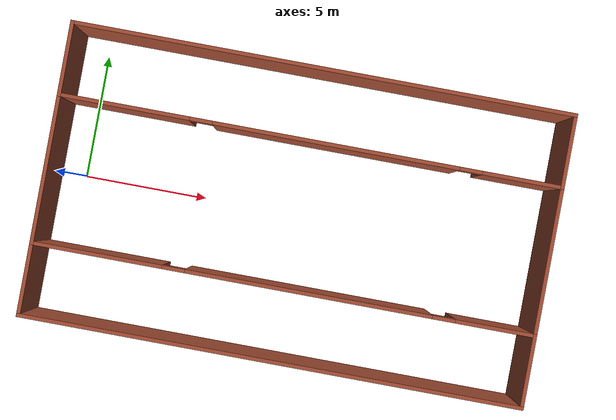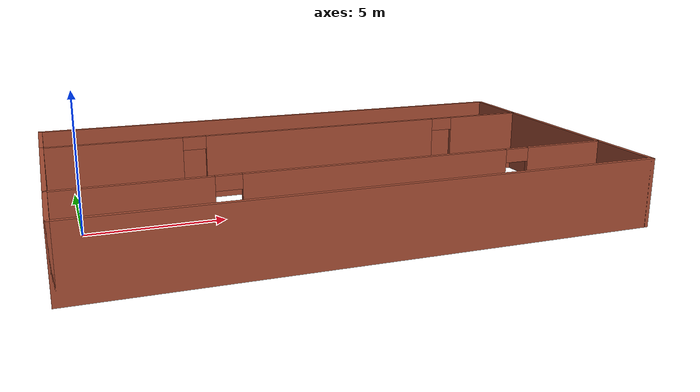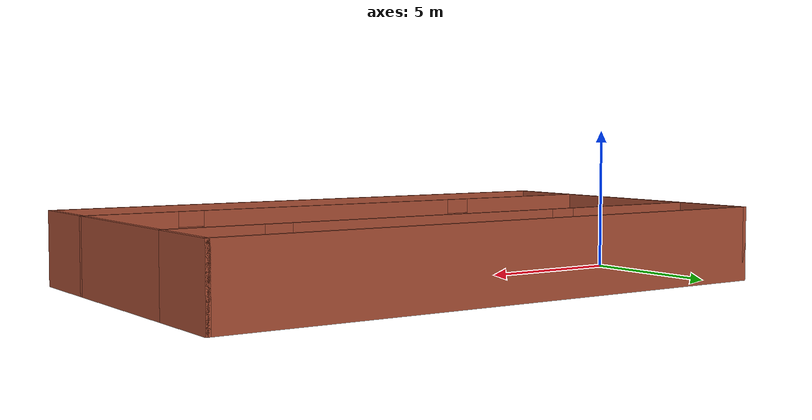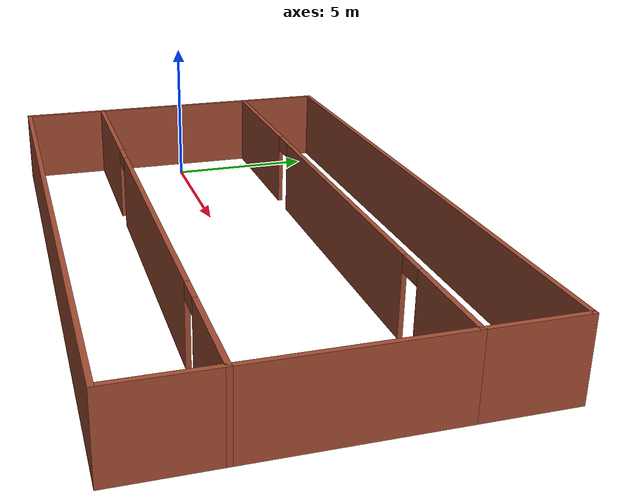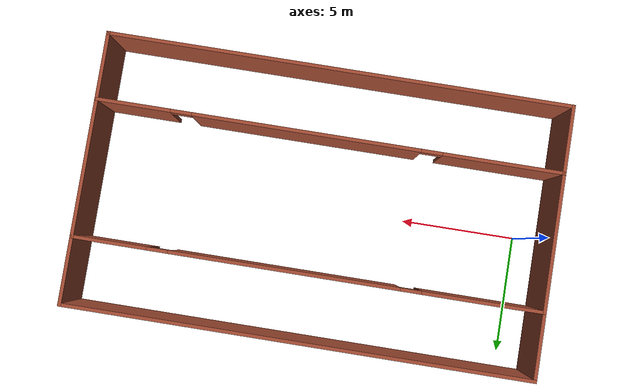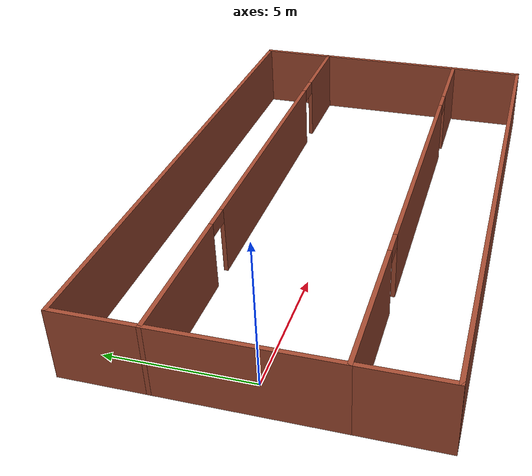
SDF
<?xml version='1.0'?>
<sdf version='1.7'>
  <model name='rltest3'>
    <pose>8.83533 0.002626 0 0 -0 0</pose>
    <link name='Wall_10'>
      <collision name='Wall_10_Collision'>
        <geometry>
          <box>
            <size>20 0.15 2.5</size>
          </box>
        </geometry>
        <pose>0 0 1.25 0 -0 0</pose>
      </collision>
      <visual name='Wall_10_Visual'>
        <pose>0 0 1.25 0 -0 0</pose>
        <geometry>
          <box>
            <size>20 0.15 2.5</size>
          </box>
        </geometry>
        <material>
          <script>
            <uri>file://media/materials/scripts/gazebo.material</uri>
            <name>Gazebo/Bricks</name>
          </script>
          <ambient>1 1 1 1</ambient>
        </material>
        <meta>
          <layer>0</layer>
        </meta>
      </visual>
      <pose>0 -5.775 0 0 -0 0</pose>
    </link>
    <link name='Wall_11'>
      <collision name='Wall_11_Collision'>
        <geometry>
          <box>
            <size>3 0.15 2.5</size>
          </box>
        </geometry>
        <pose>0 0 1.25 0 -0 0</pose>
      </collision>
      <visual name='Wall_11_Visual'>
        <pose>0 0 1.25 0 -0 0</pose>
        <geometry>
          <box>
            <size>3 0.15 2.5</size>
          </box>
        </geometry>
        <material>
          <script>
            <uri>file://media/materials/scripts/gazebo.material</uri>
            <name>Gazebo/Bricks</name>
          </script>
          <ambient>1 1 1 1</ambient>
        </material>
        <meta>
          <layer>0</layer>
        </meta>
      </visual>
      <pose>9.925 -4.35 0 0 -0 1.5708</pose>
    </link>
    <link name='Wall_13'>
      <collision name='Wall_13_Collision'>
        <geometry>
          <box>
            <size>3 0.15 2.5</size>
          </box>
        </geometry>
        <pose>0 0 1.25 0 -0 0</pose>
      </collision>
      <visual name='Wall_13_Visual'>
        <pose>0 0 1.25 0 -0 0</pose>
        <geometry>
          <box>
            <size>3 0.15 2.5</size>
          </box>
        </geometry>
        <material>
          <script>
            <uri>file://media/materials/scripts/gazebo.material</uri>
            <name>Gazebo/Bricks</name>
          </script>
          <ambient>1 1 1 1</ambient>
        </material>
        <meta>
          <layer>0</layer>
        </meta>
      </visual>
      <pose>-9.925 4.35 0 0 -0 1.5708</pose>
    </link>
    <link name='Wall_14'>
      <collision name='Wall_14_Collision'>
        <geometry>
          <box>
            <size>20 0.15 2.5</size>
          </box>
        </geometry>
        <pose>0 0 1.25 0 -0 0</pose>
      </collision>
      <visual name='Wall_14_Visual'>
        <pose>0 0 1.25 0 -0 0</pose>
        <geometry>
          <box>
            <size>20 0.15 2.5</size>
          </box>
        </geometry>
        <material>
          <script>
            <uri>file://media/materials/scripts/gazebo.material</uri>
            <name>Gazebo/Bricks</name>
          </script>
          <ambient>1 1 1 1</ambient>
        </material>
        <meta>
          <layer>0</layer>
        </meta>
      </visual>
      <pose>0 5.775 0 0 -0 0</pose>
    </link>
    <link name='Wall_15'>
      <collision name='Wall_15_Collision'>
        <geometry>
          <box>
            <size>3 0.15 2.5</size>
          </box>
        </geometry>
        <pose>0 0 1.25 0 -0 0</pose>
      </collision>
      <visual name='Wall_15_Visual'>
        <pose>0 0 1.25 0 -0 0</pose>
        <geometry>
          <box>
            <size>3 0.15 2.5</size>
          </box>
        </geometry>
        <material>
          <script>
            <uri>file://media/materials/scripts/gazebo.material</uri>
            <name>Gazebo/Bricks</name>
          </script>
          <ambient>1 1 1 1</ambient>
        </material>
        <meta>
          <layer>0</layer>
        </meta>
      </visual>
      <pose>9.925 4.35 0 0 -0 -1.5708</pose>
    </link>
    <link name='Wall_4'>
      <collision name='Wall_4_Collision'>
        <geometry>
          <box>
            <size>6 0.15 2.5</size>
          </box>
        </geometry>
        <pose>0 0 1.25 0 -0 0</pose>
      </collision>
      <visual name='Wall_4_Visual'>
        <pose>0 0 1.25 0 -0 0</pose>
        <geometry>
          <box>
            <size>6 0.15 2.5</size>
          </box>
        </geometry>
        <material>
          <script>
            <uri>file://media/materials/scripts/gazebo.material</uri>
            <name>Gazebo/Bricks</name>
          </script>
          <ambient>1 1 1 1</ambient>
        </material>
        <meta>
          <layer>0</layer>
        </meta>
      </visual>
      <pose>-9.925 -0 0 0 -0 -1.5708</pose>
    </link>
    <link name='Wall_6'>
      <pose>0 2.925 0 0 -0 0</pose>
      <visual name='Wall_6_Visual_0'>
        <pose>-7.39279 0 1.25 0 -0 0</pose>
        <geometry>
          <box>
            <size>5.21442 0.15 2.5</size>
          </box>
        </geometry>
        <material>
          <script>
            <uri>file://media/materials/scripts/gazebo.material</uri>
            <name>Gazebo/Bricks</name>
          </script>
          <ambient>1 1 1 1</ambient>
        </material>
        <meta>
          <layer>0</layer>
        </meta>
      </visual>
      <collision name='Wall_6_Collision_0'>
        <geometry>
          <box>
            <size>5.21442 0.15 2.5</size>
          </box>
        </geometry>
        <pose>-7.39279 0 1.25 0 -0 0</pose>
      </collision>
      <visual name='Wall_6_Visual_1'>
        <pose>0.997685 0 1.25 0 -0 0</pose>
        <geometry>
          <box>
            <size>9.76653 0.15 2.5</size>
          </box>
        </geometry>
        <material>
          <script>
            <uri>file://media/materials/scripts/gazebo.material</uri>
            <name>Gazebo/Bricks</name>
          </script>
          <ambient>1 1 1 1</ambient>
        </material>
        <meta>
          <layer>0</layer>
        </meta>
      </visual>
      <collision name='Wall_6_Collision_1'>
        <geometry>
          <box>
            <size>9.76653 0.15 2.5</size>
          </box>
        </geometry>
        <pose>0.997685 0 1.25 0 -0 0</pose>
      </collision>
      <visual name='Wall_6_Visual_2'>
        <pose>8.39048 0 1.25 0 -0 0</pose>
        <geometry>
          <box>
            <size>3.21905 0.15 2.5</size>
          </box>
        </geometry>
        <material>
          <script>
            <uri>file://media/materials/scripts/gazebo.material</uri>
            <name>Gazebo/Bricks</name>
          </script>
          <ambient>1 1 1 1</ambient>
        </material>
        <meta>
          <layer>0</layer>
        </meta>
      </visual>
      <collision name='Wall_6_Collision_2'>
        <geometry>
          <box>
            <size>3.21905 0.15 2.5</size>
          </box>
        </geometry>
        <pose>8.39048 0 1.25 0 -0 0</pose>
      </collision>
      <visual name='Wall_6_Visual_3'>
        <pose>-4.33558 0 2.25 0 -0 0</pose>
        <geometry>
          <box>
            <size>0.9 0.15 0.5</size>
          </box>
        </geometry>
        <material>
          <script>
            <uri>file://media/materials/scripts/gazebo.material</uri>
            <name>Gazebo/Bricks</name>
          </script>
          <ambient>1 1 1 1</ambient>
        </material>
        <meta>
          <layer>0</layer>
        </meta>
      </visual>
      <collision name='Wall_6_Collision_3'>
        <geometry>
          <box>
            <size>0.9 0.15 0.5</size>
          </box>
        </geometry>
        <pose>-4.33558 0 2.25 0 -0 0</pose>
      </collision>
      <visual name='Wall_6_Visual_4'>
        <pose>6.33095 0 2.25 0 -0 0</pose>
        <geometry>
          <box>
            <size>0.9 0.15 0.5</size>
          </box>
        </geometry>
        <material>
          <script>
            <uri>file://media/materials/scripts/gazebo.material</uri>
            <name>Gazebo/Bricks</name>
          </script>
          <ambient>1 1 1 1</ambient>
        </material>
        <meta>
          <layer>0</layer>
        </meta>
      </visual>
      <collision name='Wall_6_Collision_4'>
        <geometry>
          <box>
            <size>0.9 0.15 0.5</size>
          </box>
        </geometry>
        <pose>6.33095 0 2.25 0 -0 0</pose>
      </collision>
    </link>
    <link name='Wall_7'>
      <collision name='Wall_7_Collision'>
        <geometry>
          <box>
            <size>6 0.15 2.5</size>
          </box>
        </geometry>
        <pose>0 0 1.25 0 -0 0</pose>
      </collision>
      <visual name='Wall_7_Visual'>
        <pose>0 0 1.25 0 -0 0</pose>
        <geometry>
          <box>
            <size>6 0.15 2.5</size>
          </box>
        </geometry>
        <material>
          <script>
            <uri>file://media/materials/scripts/gazebo.material</uri>
            <name>Gazebo/Bricks</name>
          </script>
          <ambient>1 1 1 1</ambient>
        </material>
        <meta>
          <layer>0</layer>
        </meta>
      </visual>
      <pose>9.925 -0 0 0 -0 -1.5708</pose>
    </link>
    <link name='Wall_8'>
      <pose>0 -2.925 0 0 -0 3.14159</pose>
      <visual name='Wall_8_Visual_0'>
        <pose>-8.39048 0 1.25 0 -0 0</pose>
        <geometry>
          <box>
            <size>3.21905 0.15 2.5</size>
          </box>
        </geometry>
        <material>
          <script>
            <uri>file://media/materials/scripts/gazebo.material</uri>
            <name>Gazebo/Bricks</name>
          </script>
          <ambient>1 1 1 1</ambient>
        </material>
        <meta>
          <layer>0</layer>
        </meta>
      </visual>
      <collision name='Wall_8_Collision_0'>
        <geometry>
          <box>
            <size>3.21905 0.15 2.5</size>
          </box>
        </geometry>
        <pose>-8.39048 0 1.25 0 -0 0</pose>
      </collision>
      <visual name='Wall_8_Visual_1'>
        <pose>-0.994953 0 1.25 0 -0 0</pose>
        <geometry>
          <box>
            <size>9.772 0.15 2.5</size>
          </box>
        </geometry>
        <material>
          <script>
            <uri>file://media/materials/scripts/gazebo.material</uri>
            <name>Gazebo/Bricks</name>
          </script>
          <ambient>1 1 1 1</ambient>
        </material>
        <meta>
          <layer>0</layer>
        </meta>
      </visual>
      <collision name='Wall_8_Collision_1'>
        <geometry>
          <box>
            <size>9.772 0.15 2.5</size>
          </box>
        </geometry>
        <pose>-0.994953 0 1.25 0 -0 0</pose>
      </collision>
      <visual name='Wall_8_Visual_2'>
        <pose>7.39552 0 1.25 0 -0 0</pose>
        <geometry>
          <box>
            <size>5.20895 0.15 2.5</size>
          </box>
        </geometry>
        <material>
          <script>
            <uri>file://media/materials/scripts/gazebo.material</uri>
            <name>Gazebo/Bricks</name>
          </script>
          <ambient>1 1 1 1</ambient>
        </material>
        <meta>
          <layer>0</layer>
        </meta>
      </visual>
      <collision name='Wall_8_Collision_2'>
        <geometry>
          <box>
            <size>5.20895 0.15 2.5</size>
          </box>
        </geometry>
        <pose>7.39552 0 1.25 0 -0 0</pose>
      </collision>
      <visual name='Wall_8_Visual_3'>
        <pose>-6.33095 0 2.25 0 -0 0</pose>
        <geometry>
          <box>
            <size>0.9 0.15 0.5</size>
          </box>
        </geometry>
        <material>
          <script>
            <uri>file://media/materials/scripts/gazebo.material</uri>
            <name>Gazebo/Bricks</name>
          </script>
          <ambient>1 1 1 1</ambient>
        </material>
        <meta>
          <layer>0</layer>
        </meta>
      </visual>
      <collision name='Wall_8_Collision_3'>
        <geometry>
          <box>
            <size>0.9 0.15 0.5</size>
          </box>
        </geometry>
        <pose>-6.33095 0 2.25 0 -0 0</pose>
      </collision>
      <visual name='Wall_8_Visual_4'>
        <pose>4.34105 0 2.25 0 -0 0</pose>
        <geometry>
          <box>
            <size>0.9 0.15 0.5</size>
          </box>
        </geometry>
        <material>
          <script>
            <uri>file://media/materials/scripts/gazebo.material</uri>
            <name>Gazebo/Bricks</name>
          </script>
          <ambient>1 1 1 1</ambient>
        </material>
        <meta>
          <layer>0</layer>
        </meta>
      </visual>
      <collision name='Wall_8_Collision_4'>
        <geometry>
          <box>
            <size>0.9 0.15 0.5</size>
          </box>
        </geometry>
        <pose>4.34105 0 2.25 0 -0 0</pose>
      </collision>
    </link>
    <link name='Wall_9'>
      <collision name='Wall_9_Collision'>
        <geometry>
          <box>
            <size>3 0.15 2.5</size>
          </box>
        </geometry>
        <pose>0 0 1.25 0 -0 0</pose>
      </collision>
      <visual name='Wall_9_Visual'>
        <pose>0 0 1.25 0 -0 0</pose>
        <geometry>
          <box>
            <size>3 0.15 2.5</size>
          </box>
        </geometry>
        <material>
          <script>
            <uri>file://media/materials/scripts/gazebo.material</uri>
            <name>Gazebo/Bricks</name>
          </script>
          <ambient>1 1 1 1</ambient>
        </material>
        <meta>
          <layer>0</layer>
        </meta>
      </visual>
      <pose>-9.925 -4.35 0 0 -0 -1.5708</pose>
    </link>
    <static>1</static>
  </model>
</sdf>
